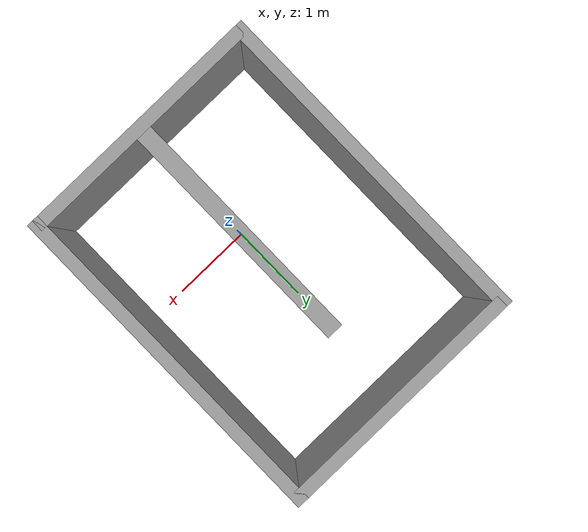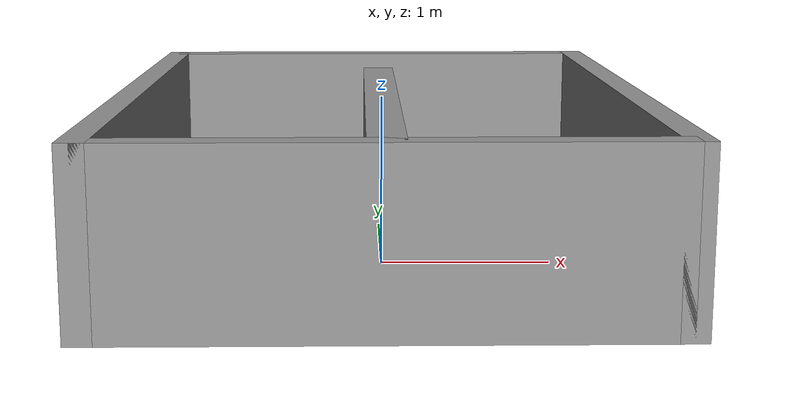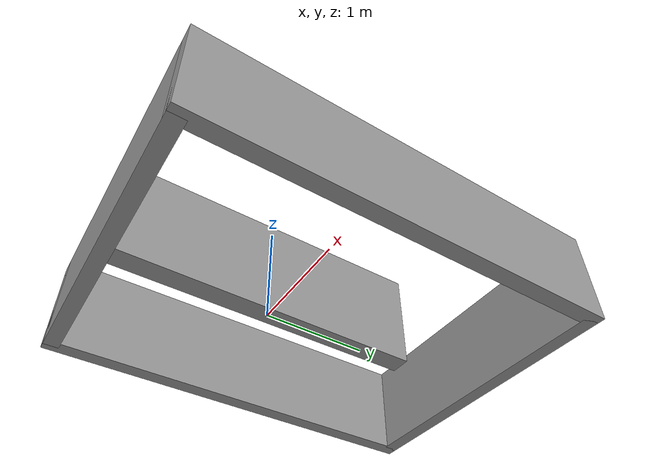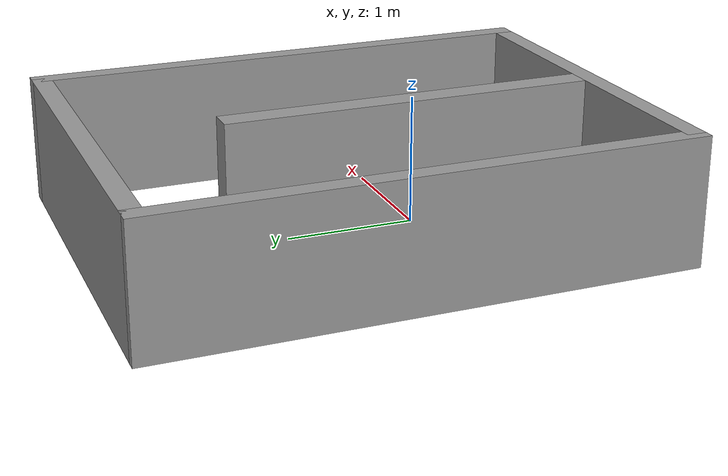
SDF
<?xml version='1.0'?>
<sdf version='1.5'>
  <model name='Sharp_turn'>
    <link name='Wall_10'>
      <pose frame=''>0 2.5 0 0 -0 3.14159</pose>
      <self_collide>0</self_collide>
      <kinematic>0</kinematic>
      <visual name='Wall_10_Visual'>
        <pose frame=''>0 0 0.5 0 -0 0</pose>
        <geometry>
          <box>
            <size>3 0.15 1</size>
          </box>
        </geometry>
        <material>
          <script>
            <uri>file://media/materials/scripts/gazebo.material</uri>
            <name>Gazebo/Grey</name>
          </script>
          <ambient>1 1 1 1</ambient>
        </material>
        <cast_shadows>1</cast_shadows>
        <transparency>0</transparency>
      </visual>
      <collision name='Wall_10_Collision'>
        <laser_retro>0</laser_retro>
        <max_contacts>10</max_contacts>
        <pose frame=''>0 0 0.5 0 -0 0</pose>
        <geometry>
          <box>
            <size>3 0.15 1</size>
          </box>
        </geometry>
        <surface>
          <friction>
            <ode>
              <mu>1</mu>
              <mu2>1</mu2>
              <fdir1>0 0 0</fdir1>
              <slip1>0</slip1>
              <slip2>0</slip2>
            </ode>
          </friction>
          <bounce>
            <restitution_coefficient>0</restitution_coefficient>
            <threshold>1e+06</threshold>
          </bounce>
          <contact>
            <collide_without_contact>0</collide_without_contact>
            <collide_without_contact_bitmask>1</collide_without_contact_bitmask>
            <collide_bitmask>1</collide_bitmask>
            <ode>
              <soft_cfm>0</soft_cfm>
              <soft_erp>0.2</soft_erp>
              <kp>1e+13</kp>
              <kd>1</kd>
              <max_vel>0.01</max_vel>
              <min_depth>0</min_depth>
            </ode>
            <bullet>
              <split_impulse>1</split_impulse>
              <split_impulse_penetration_threshold>-0.01</split_impulse_penetration_threshold>
              <soft_cfm>0</soft_cfm>
              <soft_erp>0.2</soft_erp>
              <kp>1e+13</kp>
              <kd>1</kd>
            </bullet>
          </contact>
        </surface>
      </collision>
    </link>
    <link name='Wall_11'>
      <pose frame=''>-1.5 0.5 0 0 0 -1.5708</pose>
      <self_collide>0</self_collide>
      <kinematic>0</kinematic>
      <visual name='Wall_11_Visual'>
        <pose frame=''>0 0 0.5 0 -0 0</pose>
        <geometry>
          <box>
            <size>4.15 0.15 1</size>
          </box>
        </geometry>
        <material>
          <script>
            <uri>file://media/materials/scripts/gazebo.material</uri>
            <name>Gazebo/Grey</name>
          </script>
          <ambient>1 1 1 1</ambient>
        </material>
        <cast_shadows>1</cast_shadows>
        <transparency>0</transparency>
      </visual>
      <collision name='Wall_11_Collision'>
        <laser_retro>0</laser_retro>
        <max_contacts>10</max_contacts>
        <pose frame=''>0 0 0.5 0 -0 0</pose>
        <geometry>
          <box>
            <size>4.15 0.15 1</size>
          </box>
        </geometry>
        <surface>
          <friction>
            <ode>
              <mu>1</mu>
              <mu2>1</mu2>
              <fdir1>0 0 0</fdir1>
              <slip1>0</slip1>
              <slip2>0</slip2>
            </ode>
          </friction>
          <bounce>
            <restitution_coefficient>0</restitution_coefficient>
            <threshold>1e+06</threshold>
          </bounce>
          <contact>
            <collide_without_contact>0</collide_without_contact>
            <collide_without_contact_bitmask>1</collide_without_contact_bitmask>
            <collide_bitmask>1</collide_bitmask>
            <ode>
              <soft_cfm>0</soft_cfm>
              <soft_erp>0.2</soft_erp>
              <kp>1e+13</kp>
              <kd>1</kd>
              <max_vel>0.01</max_vel>
              <min_depth>0</min_depth>
            </ode>
            <bullet>
              <split_impulse>1</split_impulse>
              <split_impulse_penetration_threshold>-0.01</split_impulse_penetration_threshold>
              <soft_cfm>0</soft_cfm>
              <soft_erp>0.2</soft_erp>
              <kp>1e+13</kp>
              <kd>1</kd>
            </bullet>
          </contact>
        </surface>
      </collision>
    </link>
    <link name='Wall_13'>
      <pose frame=''>0 0 0 0 -0 1.5708</pose>
      <self_collide>0</self_collide>
      <kinematic>0</kinematic>
      <visual name='Wall_13_Visual'>
        <pose frame=''>0 0 0.5 0 -0 0</pose>
        <geometry>
          <box>
            <size>3 0.2 1</size>
          </box>
        </geometry>
        <material>
          <script>
            <uri>file://media/materials/scripts/gazebo.material</uri>
            <name>Gazebo/Grey</name>
          </script>
          <ambient>1 1 1 1</ambient>
        </material>
        <cast_shadows>1</cast_shadows>
        <transparency>0</transparency>
      </visual>
      <collision name='Wall_13_Collision'>
        <laser_retro>0</laser_retro>
        <max_contacts>10</max_contacts>
        <pose frame=''>0 0 0.5 0 -0 0</pose>
        <geometry>
          <box>
            <size>3 0.2 1</size>
          </box>
        </geometry>
        <surface>
          <friction>
            <ode>
              <mu>1</mu>
              <mu2>1</mu2>
              <fdir1>0 0 0</fdir1>
              <slip1>0</slip1>
              <slip2>0</slip2>
            </ode>
          </friction>
          <bounce>
            <restitution_coefficient>0</restitution_coefficient>
            <threshold>1e+06</threshold>
          </bounce>
          <contact>
            <collide_without_contact>0</collide_without_contact>
            <collide_without_contact_bitmask>1</collide_without_contact_bitmask>
            <collide_bitmask>1</collide_bitmask>
            <ode>
              <soft_cfm>0</soft_cfm>
              <soft_erp>0.2</soft_erp>
              <kp>1e+13</kp>
              <kd>1</kd>
              <max_vel>0.01</max_vel>
              <min_depth>0</min_depth>
            </ode>
            <bullet>
              <split_impulse>1</split_impulse>
              <split_impulse_penetration_threshold>-0.01</split_impulse_penetration_threshold>
              <soft_cfm>0</soft_cfm>
              <soft_erp>0.2</soft_erp>
              <kp>1e+13</kp>
              <kd>1</kd>
            </bullet>
          </contact>
        </surface>
      </collision>
    </link>
    <link name='Wall_6'>
      <pose frame=''>0 -1.5 0 0 -0 0</pose>
      <self_collide>0</self_collide>
      <kinematic>0</kinematic>
      <visual name='Wall_6_Visual'>
        <pose frame=''>0 0 0.5 0 -0 0</pose>
        <geometry>
          <box>
            <size>3 0.15 1</size>
          </box>
        </geometry>
        <material>
          <script>
            <uri>file://media/materials/scripts/gazebo.material</uri>
            <name>Gazebo/Grey</name>
          </script>
          <ambient>1 1 1 1</ambient>
        </material>
        <cast_shadows>1</cast_shadows>
        <transparency>0</transparency>
      </visual>
      <collision name='Wall_6_Collision'>
        <laser_retro>0</laser_retro>
        <max_contacts>10</max_contacts>
        <pose frame=''>0 0 0.5 0 -0 0</pose>
        <geometry>
          <box>
            <size>3 0.15 1</size>
          </box>
        </geometry>
        <surface>
          <friction>
            <ode>
              <mu>1</mu>
              <mu2>1</mu2>
              <fdir1>0 0 0</fdir1>
              <slip1>0</slip1>
              <slip2>0</slip2>
            </ode>
          </friction>
          <bounce>
            <restitution_coefficient>0</restitution_coefficient>
            <threshold>1e+06</threshold>
          </bounce>
          <contact>
            <collide_without_contact>0</collide_without_contact>
            <collide_without_contact_bitmask>1</collide_without_contact_bitmask>
            <collide_bitmask>1</collide_bitmask>
            <ode>
              <soft_cfm>0</soft_cfm>
              <soft_erp>0.2</soft_erp>
              <kp>1e+13</kp>
              <kd>1</kd>
              <max_vel>0.01</max_vel>
              <min_depth>0</min_depth>
            </ode>
            <bullet>
              <split_impulse>1</split_impulse>
              <split_impulse_penetration_threshold>-0.01</split_impulse_penetration_threshold>
              <soft_cfm>0</soft_cfm>
              <soft_erp>0.2</soft_erp>
              <kp>1e+13</kp>
              <kd>1</kd>
            </bullet>
          </contact>
        </surface>
      </collision>
    </link>
    <link name='Wall_7'>
      <pose frame=''>1.5 0.5 0 0 -0 1.5708</pose>
      <self_collide>0</self_collide>
      <kinematic>0</kinematic>
      <visual name='Wall_7_Visual'>
        <pose frame=''>0 0 0.5 0 -0 0</pose>
        <geometry>
          <box>
            <size>4.15 0.15 1</size>
          </box>
        </geometry>
        <material>
          <script>
            <uri>file://media/materials/scripts/gazebo.material</uri>
            <name>Gazebo/Grey</name>
          </script>
          <ambient>1 1 1 1</ambient>
        </material>
        <cast_shadows>1</cast_shadows>
        <transparency>0</transparency>
      </visual>
      <collision name='Wall_7_Collision'>
        <laser_retro>0</laser_retro>
        <max_contacts>10</max_contacts>
        <pose frame=''>0 0 0.5 0 -0 0</pose>
        <geometry>
          <box>
            <size>4.15 0.15 1</size>
          </box>
        </geometry>
        <surface>
          <friction>
            <ode>
              <mu>1</mu>
              <mu2>1</mu2>
              <fdir1>0 0 0</fdir1>
              <slip1>0</slip1>
              <slip2>0</slip2>
            </ode>
          </friction>
          <bounce>
            <restitution_coefficient>0</restitution_coefficient>
            <threshold>1e+06</threshold>
          </bounce>
          <contact>
            <collide_without_contact>0</collide_without_contact>
            <collide_without_contact_bitmask>1</collide_without_contact_bitmask>
            <collide_bitmask>1</collide_bitmask>
            <ode>
              <soft_cfm>0</soft_cfm>
              <soft_erp>0.2</soft_erp>
              <kp>1e+13</kp>
              <kd>1</kd>
              <max_vel>0.01</max_vel>
              <min_depth>0</min_depth>
            </ode>
            <bullet>
              <split_impulse>1</split_impulse>
              <split_impulse_penetration_threshold>-0.01</split_impulse_penetration_threshold>
              <soft_cfm>0</soft_cfm>
              <soft_erp>0.2</soft_erp>
              <kp>1e+13</kp>
              <kd>1</kd>
            </bullet>
          </contact>
        </surface>
      </collision>
    </link>
    <static>1</static>
    <allow_auto_disable>1</allow_auto_disable>
  </model>
</sdf>
